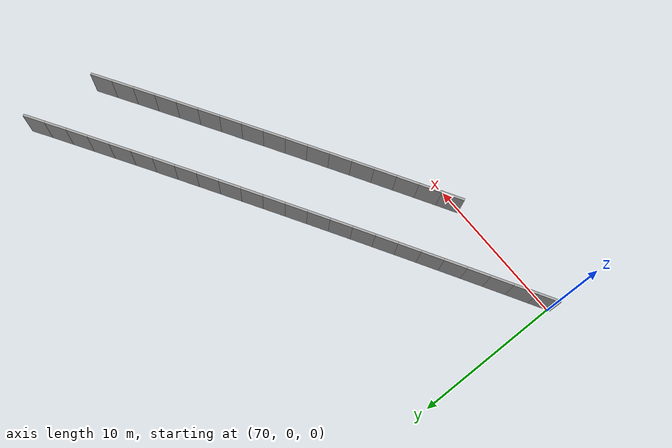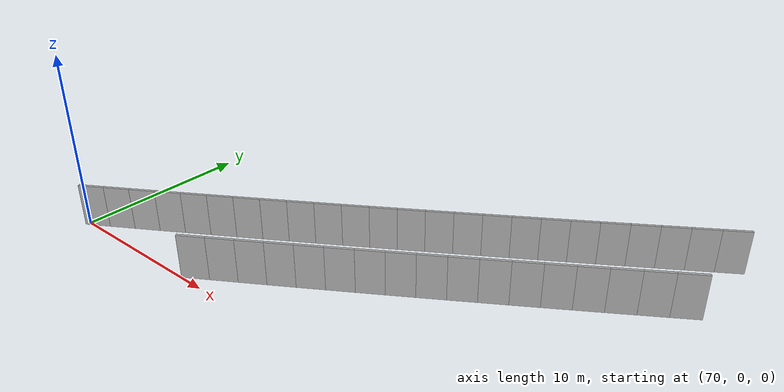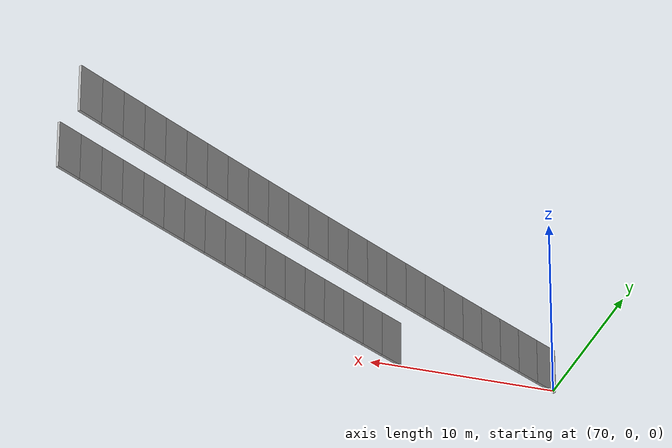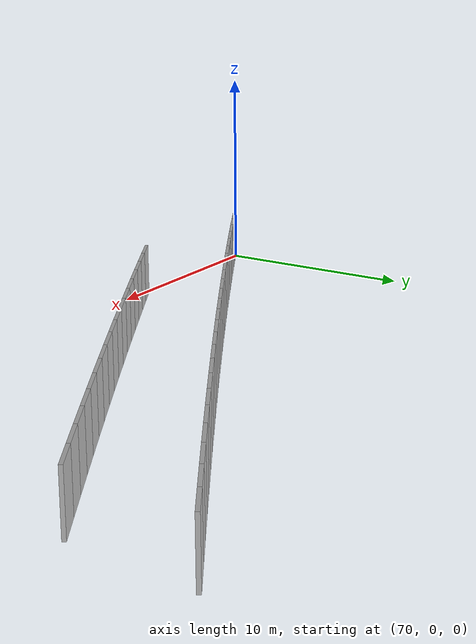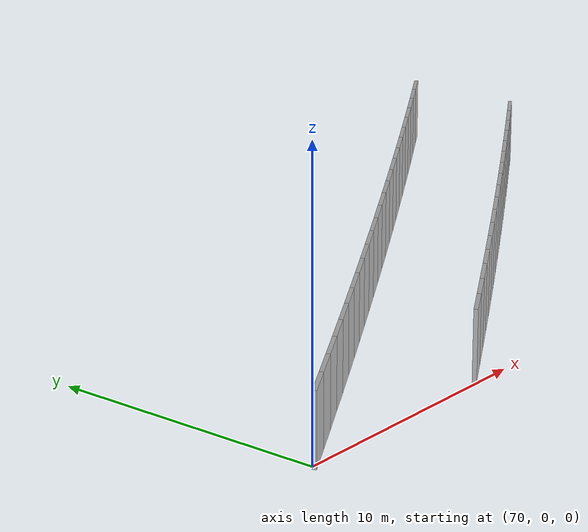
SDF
<?xml version="1.0" ?>
<sdf version="1.6">
  <model name="sps_1703">
    <pose frame="">0 0 0 0 -0 0</pose>
    <static>1</static>
    <self_collide>0</self_collide>
    <allow_auto_disable>0</allow_auto_disable>
    <link name="Wall4041">
      <kinematic>0</kinematic>
      <gravity>1</gravity>
      <self_collide>0</self_collide>
      <collision name="collision">
        <geometry>
          <box>
            <size>1.49662 0.15 2.5</size>
          </box>
        </geometry>
        <pose frame="">0 0 0 0 -0 0</pose>
      </collision>
      <visual name="visual">
        <geometry>
          <box>
            <size>1.49662 0.15 2.5</size>
          </box>
        </geometry>
        <pose frame="">0 0 0 0 -0 0</pose>
        <cast_shadows>1</cast_shadows>
        <transparency>0.0</transparency>
      </visual>
      <pose frame="">70.5067 0.202315 1.25 0 -0 0.533265</pose>
    </link>
    <link name="Wall4042">
      <kinematic>0</kinematic>
      <gravity>1</gravity>
      <self_collide>0</self_collide>
      <collision name="collision">
        <geometry>
          <box>
            <size>1.49635 0.15 2.5</size>
          </box>
        </geometry>
        <pose frame="">0 0 0 0 -0 0</pose>
      </collision>
      <visual name="visual">
        <geometry>
          <box>
            <size>1.49635 0.15 2.5</size>
          </box>
        </geometry>
        <pose frame="">0 0 0 0 -0 0</pose>
        <cast_shadows>1</cast_shadows>
        <transparency>0.0</transparency>
      </visual>
      <pose frame="">71.7948 0.964095 1.25 0 -0 0.534886</pose>
    </link>
    <link name="Wall4043">
      <kinematic>0</kinematic>
      <gravity>1</gravity>
      <self_collide>0</self_collide>
      <collision name="collision">
        <geometry>
          <box>
            <size>1.49651 0.15 2.5</size>
          </box>
        </geometry>
        <pose frame="">0 0 0 0 -0 0</pose>
      </collision>
      <visual name="visual">
        <geometry>
          <box>
            <size>1.49651 0.15 2.5</size>
          </box>
        </geometry>
        <pose frame="">0 0 0 0 -0 0</pose>
        <cast_shadows>1</cast_shadows>
        <transparency>0.0</transparency>
      </visual>
      <pose frame="">73.0815 1.72798 1.25 0 -0 0.536579</pose>
    </link>
    <link name="Wall4044">
      <kinematic>0</kinematic>
      <gravity>1</gravity>
      <self_collide>0</self_collide>
      <collision name="collision">
        <geometry>
          <box>
            <size>1.49658 0.15 2.5</size>
          </box>
        </geometry>
        <pose frame="">0 0 0 0 -0 0</pose>
      </collision>
      <visual name="visual">
        <geometry>
          <box>
            <size>1.49658 0.15 2.5</size>
          </box>
        </geometry>
        <pose frame="">0 0 0 0 -0 0</pose>
        <cast_shadows>1</cast_shadows>
        <transparency>0.0</transparency>
      </visual>
      <pose frame="">74.3672 2.49388 1.25 0 -0 0.53793</pose>
    </link>
    <link name="Wall4045">
      <kinematic>0</kinematic>
      <gravity>1</gravity>
      <self_collide>0</self_collide>
      <collision name="collision">
        <geometry>
          <box>
            <size>1.49653 0.15 2.5</size>
          </box>
        </geometry>
        <pose frame="">0 0 0 0 -0 0</pose>
      </collision>
      <visual name="visual">
        <geometry>
          <box>
            <size>1.49653 0.15 2.5</size>
          </box>
        </geometry>
        <pose frame="">0 0 0 0 -0 0</pose>
        <cast_shadows>1</cast_shadows>
        <transparency>0.0</transparency>
      </visual>
      <pose frame="">75.6518 3.26179 1.25 0 -0 0.539706</pose>
    </link>
    <link name="Wall4046">
      <kinematic>0</kinematic>
      <gravity>1</gravity>
      <self_collide>0</self_collide>
      <collision name="collision">
        <geometry>
          <box>
            <size>1.49652 0.15 2.5</size>
          </box>
        </geometry>
        <pose frame="">0 0 0 0 -0 0</pose>
      </collision>
      <visual name="visual">
        <geometry>
          <box>
            <size>1.49652 0.15 2.5</size>
          </box>
        </geometry>
        <pose frame="">0 0 0 0 -0 0</pose>
        <cast_shadows>1</cast_shadows>
        <transparency>0.0</transparency>
      </visual>
      <pose frame="">76.9351 4.03169 1.25 0 -0 0.541042</pose>
    </link>
    <link name="Wall4047">
      <kinematic>0</kinematic>
      <gravity>1</gravity>
      <self_collide>0</self_collide>
      <collision name="collision">
        <geometry>
          <box>
            <size>1.49653 0.15 2.5</size>
          </box>
        </geometry>
        <pose frame="">0 0 0 0 -0 0</pose>
      </collision>
      <visual name="visual">
        <geometry>
          <box>
            <size>1.49653 0.15 2.5</size>
          </box>
        </geometry>
        <pose frame="">0 0 0 0 -0 0</pose>
        <cast_shadows>1</cast_shadows>
        <transparency>0.0</transparency>
      </visual>
      <pose frame="">78.2172 4.80357 1.25 0 -0 0.542798</pose>
    </link>
    <link name="Wall4048">
      <kinematic>0</kinematic>
      <gravity>1</gravity>
      <self_collide>0</self_collide>
      <collision name="collision">
        <geometry>
          <box>
            <size>1.49653 0.15 2.5</size>
          </box>
        </geometry>
        <pose frame="">0 0 0 0 -0 0</pose>
      </collision>
      <visual name="visual">
        <geometry>
          <box>
            <size>1.49653 0.15 2.5</size>
          </box>
        </geometry>
        <pose frame="">0 0 0 0 -0 0</pose>
        <cast_shadows>1</cast_shadows>
        <transparency>0.0</transparency>
      </visual>
      <pose frame="">79.498 5.57759 1.25 0 -0 0.544371</pose>
    </link>
    <link name="Wall4049">
      <kinematic>0</kinematic>
      <gravity>1</gravity>
      <self_collide>0</self_collide>
      <collision name="collision">
        <geometry>
          <box>
            <size>1.4965 0.15 2.5</size>
          </box>
        </geometry>
        <pose frame="">0 0 0 0 -0 0</pose>
      </collision>
      <visual name="visual">
        <geometry>
          <box>
            <size>1.4965 0.15 2.5</size>
          </box>
        </geometry>
        <pose frame="">0 0 0 0 -0 0</pose>
        <cast_shadows>1</cast_shadows>
        <transparency>0.0</transparency>
      </visual>
      <pose frame="">80.7776 6.35359 1.25 0 -0 0.54591</pose>
    </link>
    <link name="Wall4050">
      <kinematic>0</kinematic>
      <gravity>1</gravity>
      <self_collide>0</self_collide>
      <collision name="collision">
        <geometry>
          <box>
            <size>1.49663 0.15 2.5</size>
          </box>
        </geometry>
        <pose frame="">0 0 0 0 -0 0</pose>
      </collision>
      <visual name="visual">
        <geometry>
          <box>
            <size>1.49663 0.15 2.5</size>
          </box>
        </geometry>
        <pose frame="">0 0 0 0 -0 0</pose>
        <cast_shadows>1</cast_shadows>
        <transparency>0.0</transparency>
      </visual>
      <pose frame="">82.056 7.1317 1.25 0 -0 0.547623</pose>
    </link>
    <link name="Wall4051">
      <kinematic>0</kinematic>
      <gravity>1</gravity>
      <self_collide>0</self_collide>
      <collision name="collision">
        <geometry>
          <box>
            <size>1.49641 0.15 2.5</size>
          </box>
        </geometry>
        <pose frame="">0 0 0 0 -0 0</pose>
      </collision>
      <visual name="visual">
        <geometry>
          <box>
            <size>1.49641 0.15 2.5</size>
          </box>
        </geometry>
        <pose frame="">0 0 0 0 -0 0</pose>
        <cast_shadows>1</cast_shadows>
        <transparency>0.0</transparency>
      </visual>
      <pose frame="">83.3331 7.91182 1.25 0 -0 0.5491</pose>
    </link>
    <link name="Wall4052">
      <kinematic>0</kinematic>
      <gravity>1</gravity>
      <self_collide>0</self_collide>
      <collision name="collision">
        <geometry>
          <box>
            <size>1.49639 0.15 2.5</size>
          </box>
        </geometry>
        <pose frame="">0 0 0 0 -0 0</pose>
      </collision>
      <visual name="visual">
        <geometry>
          <box>
            <size>1.49639 0.15 2.5</size>
          </box>
        </geometry>
        <pose frame="">0 0 0 0 -0 0</pose>
        <cast_shadows>1</cast_shadows>
        <transparency>0.0</transparency>
      </visual>
      <pose frame="">84.6089 8.6938 1.25 0 -0 0.55064</pose>
    </link>
    <link name="Wall4053">
      <kinematic>0</kinematic>
      <gravity>1</gravity>
      <self_collide>0</self_collide>
      <collision name="collision">
        <geometry>
          <box>
            <size>1.49669 0.15 2.5</size>
          </box>
        </geometry>
        <pose frame="">0 0 0 0 -0 0</pose>
      </collision>
      <visual name="visual">
        <geometry>
          <box>
            <size>1.49669 0.15 2.5</size>
          </box>
        </geometry>
        <pose frame="">0 0 0 0 -0 0</pose>
        <cast_shadows>1</cast_shadows>
        <transparency>0.0</transparency>
      </visual>
      <pose frame="">85.8836 9.47789 1.25 0 -0 0.552288</pose>
    </link>
    <link name="Wall4054">
      <kinematic>0</kinematic>
      <gravity>1</gravity>
      <self_collide>0</self_collide>
      <collision name="collision">
        <geometry>
          <box>
            <size>1.49636 0.15 2.5</size>
          </box>
        </geometry>
        <pose frame="">0 0 0 0 -0 0</pose>
      </collision>
      <visual name="visual">
        <geometry>
          <box>
            <size>1.49636 0.15 2.5</size>
          </box>
        </geometry>
        <pose frame="">0 0 0 0 -0 0</pose>
        <cast_shadows>1</cast_shadows>
        <transparency>0.0</transparency>
      </visual>
      <pose frame="">87.1569 10.2641 1.25 0 -0 0.553956</pose>
    </link>
    <link name="Wall4055">
      <kinematic>0</kinematic>
      <gravity>1</gravity>
      <self_collide>0</self_collide>
      <collision name="collision">
        <geometry>
          <box>
            <size>1.4965 0.15 2.5</size>
          </box>
        </geometry>
        <pose frame="">0 0 0 0 -0 0</pose>
      </collision>
      <visual name="visual">
        <geometry>
          <box>
            <size>1.4965 0.15 2.5</size>
          </box>
        </geometry>
        <pose frame="">0 0 0 0 -0 0</pose>
        <cast_shadows>1</cast_shadows>
        <transparency>0.0</transparency>
      </visual>
      <pose frame="">88.429 11.0522 1.25 0 -0 0.55534</pose>
    </link>
    <link name="Wall4056">
      <kinematic>0</kinematic>
      <gravity>1</gravity>
      <self_collide>0</self_collide>
      <collision name="collision">
        <geometry>
          <box>
            <size>1.49662 0.15 2.5</size>
          </box>
        </geometry>
        <pose frame="">0 0 0 0 -0 0</pose>
      </collision>
      <visual name="visual">
        <geometry>
          <box>
            <size>1.49662 0.15 2.5</size>
          </box>
        </geometry>
        <pose frame="">0 0 0 0 -0 0</pose>
        <cast_shadows>1</cast_shadows>
        <transparency>0.0</transparency>
      </visual>
      <pose frame="">89.7 11.8423 1.25 0 -0 0.557017</pose>
    </link>
    <link name="Wall4057">
      <kinematic>0</kinematic>
      <gravity>1</gravity>
      <self_collide>0</self_collide>
      <collision name="collision">
        <geometry>
          <box>
            <size>1.49655 0.15 2.5</size>
          </box>
        </geometry>
        <pose frame="">0 0 0 0 -0 0</pose>
      </collision>
      <visual name="visual">
        <geometry>
          <box>
            <size>1.49655 0.15 2.5</size>
          </box>
        </geometry>
        <pose frame="">0 0 0 0 -0 0</pose>
        <cast_shadows>1</cast_shadows>
        <transparency>0.0</transparency>
      </visual>
      <pose frame="">90.9697 12.6345 1.25 0 -0 0.558634</pose>
    </link>
    <link name="Wall4058">
      <kinematic>0</kinematic>
      <gravity>1</gravity>
      <self_collide>0</self_collide>
      <collision name="collision">
        <geometry>
          <box>
            <size>1.49663 0.15 2.5</size>
          </box>
        </geometry>
        <pose frame="">0 0 0 0 -0 0</pose>
      </collision>
      <visual name="visual">
        <geometry>
          <box>
            <size>1.49663 0.15 2.5</size>
          </box>
        </geometry>
        <pose frame="">0 0 0 0 -0 0</pose>
        <cast_shadows>1</cast_shadows>
        <transparency>0.0</transparency>
      </visual>
      <pose frame="">92.2382 13.4288 1.25 0 -0 0.560333</pose>
    </link>
    <link name="Wall4059">
      <kinematic>0</kinematic>
      <gravity>1</gravity>
      <self_collide>0</self_collide>
      <collision name="collision">
        <geometry>
          <box>
            <size>1.49659 0.15 2.5</size>
          </box>
        </geometry>
        <pose frame="">0 0 0 0 -0 0</pose>
      </collision>
      <visual name="visual">
        <geometry>
          <box>
            <size>1.49659 0.15 2.5</size>
          </box>
        </geometry>
        <pose frame="">0 0 0 0 -0 0</pose>
        <cast_shadows>1</cast_shadows>
        <transparency>0.0</transparency>
      </visual>
      <pose frame="">93.5053 14.2251 1.25 0 -0 0.561746</pose>
    </link>
    <link name="Wall4060">
      <kinematic>0</kinematic>
      <gravity>1</gravity>
      <self_collide>0</self_collide>
      <collision name="collision">
        <geometry>
          <box>
            <size>1.49647 0.15 2.5</size>
          </box>
        </geometry>
        <pose frame="">0 0 0 0 -0 0</pose>
      </collision>
      <visual name="visual">
        <geometry>
          <box>
            <size>1.49647 0.15 2.5</size>
          </box>
        </geometry>
        <pose frame="">0 0 0 0 -0 0</pose>
        <cast_shadows>1</cast_shadows>
        <transparency>0.0</transparency>
      </visual>
      <pose frame="">94.7712 15.0233 1.25 0 -0 0.563385</pose>
    </link>
    <link name="Wall4061">
      <kinematic>0</kinematic>
      <gravity>1</gravity>
      <self_collide>0</self_collide>
      <collision name="collision">
        <geometry>
          <box>
            <size>1.49657 0.15 2.5</size>
          </box>
        </geometry>
        <pose frame="">0 0 0 0 -0 0</pose>
      </collision>
      <visual name="visual">
        <geometry>
          <box>
            <size>1.49657 0.15 2.5</size>
          </box>
        </geometry>
        <pose frame="">0 0 0 0 -0 0</pose>
        <cast_shadows>1</cast_shadows>
        <transparency>0.0</transparency>
      </visual>
      <pose frame="">96.0358 15.8235 1.25 0 -0 0.564937</pose>
    </link>
    <link name="Wall4062">
      <kinematic>0</kinematic>
      <gravity>1</gravity>
      <self_collide>0</self_collide>
      <collision name="collision">
        <geometry>
          <box>
            <size>1.49662 0.15 2.5</size>
          </box>
        </geometry>
        <pose frame="">0 0 0 0 -0 0</pose>
      </collision>
      <visual name="visual">
        <geometry>
          <box>
            <size>1.49662 0.15 2.5</size>
          </box>
        </geometry>
        <pose frame="">0 0 0 0 -0 0</pose>
        <cast_shadows>1</cast_shadows>
        <transparency>0.0</transparency>
      </visual>
      <pose frame="">97.2993 16.6257 1.25 0 -0 0.56651</pose>
    </link>
    <link name="Wall4063">
      <kinematic>0</kinematic>
      <gravity>1</gravity>
      <self_collide>0</self_collide>
      <collision name="collision">
        <geometry>
          <box>
            <size>1.49644 0.15 2.5</size>
          </box>
        </geometry>
        <pose frame="">0 0 0 0 -0 0</pose>
      </collision>
      <visual name="visual">
        <geometry>
          <box>
            <size>1.49644 0.15 2.5</size>
          </box>
        </geometry>
        <pose frame="">0 0 0 0 -0 0</pose>
        <cast_shadows>1</cast_shadows>
        <transparency>0.0</transparency>
      </visual>
      <pose frame="">98.5614 17.4299 1.25 0 -0 0.568137</pose>
    </link>
    <link name="Wall4064">
      <kinematic>0</kinematic>
      <gravity>1</gravity>
      <self_collide>0</self_collide>
      <collision name="collision">
        <geometry>
          <box>
            <size>1.49629 0.15 2.5</size>
          </box>
        </geometry>
        <pose frame="">0 0 0 0 -0 0</pose>
      </collision>
      <visual name="visual">
        <geometry>
          <box>
            <size>1.49629 0.15 2.5</size>
          </box>
        </geometry>
        <pose frame="">0 0 0 0 -0 0</pose>
        <cast_shadows>1</cast_shadows>
        <transparency>0.0</transparency>
      </visual>
      <pose frame="">99.822 18.236 1.25 0 -0 0.569651</pose>
    </link>
    <link name="Wall7821">
      <kinematic>0</kinematic>
      <gravity>1</gravity>
      <self_collide>0</self_collide>
      <collision name="collision">
        <geometry>
          <box>
            <size>1.50322 0.15 2.5</size>
          </box>
        </geometry>
        <pose frame="">0 0 0 0 -0 0</pose>
      </collision>
      <visual name="visual">
        <geometry>
          <box>
            <size>1.50322 0.15 2.5</size>
          </box>
        </geometry>
        <pose frame="">0 0 0 0 -0 0</pose>
        <cast_shadows>1</cast_shadows>
        <transparency>0.0</transparency>
      </visual>
      <pose frame="">79.0696 0.483901 1.25 0 -0 0.541206</pose>
    </link>
    <link name="Wall7822">
      <kinematic>0</kinematic>
      <gravity>1</gravity>
      <self_collide>0</self_collide>
      <collision name="collision">
        <geometry>
          <box>
            <size>1.50287 0.15 2.5</size>
          </box>
        </geometry>
        <pose frame="">0 0 0 0 -0 0</pose>
      </collision>
      <visual name="visual">
        <geometry>
          <box>
            <size>1.50287 0.15 2.5</size>
          </box>
        </geometry>
        <pose frame="">0 0 0 0 -0 0</pose>
        <cast_shadows>1</cast_shadows>
        <transparency>0.0</transparency>
      </visual>
      <pose frame="">80.3572 1.25929 1.25 0 -0 0.542864</pose>
    </link>
    <link name="Wall7823">
      <kinematic>0</kinematic>
      <gravity>1</gravity>
      <self_collide>0</self_collide>
      <collision name="collision">
        <geometry>
          <box>
            <size>1.50314 0.15 2.5</size>
          </box>
        </geometry>
        <pose frame="">0 0 0 0 -0 0</pose>
      </collision>
      <visual name="visual">
        <geometry>
          <box>
            <size>1.50314 0.15 2.5</size>
          </box>
        </geometry>
        <pose frame="">0 0 0 0 -0 0</pose>
        <cast_shadows>1</cast_shadows>
        <transparency>0.0</transparency>
      </visual>
      <pose frame="">81.6436 2.03657 1.25 0 -0 0.54418</pose>
    </link>
    <link name="Wall7824">
      <kinematic>0</kinematic>
      <gravity>1</gravity>
      <self_collide>0</self_collide>
      <collision name="collision">
        <geometry>
          <box>
            <size>1.50307 0.15 2.5</size>
          </box>
        </geometry>
        <pose frame="">0 0 0 0 -0 0</pose>
      </collision>
      <visual name="visual">
        <geometry>
          <box>
            <size>1.50307 0.15 2.5</size>
          </box>
        </geometry>
        <pose frame="">0 0 0 0 -0 0</pose>
        <cast_shadows>1</cast_shadows>
        <transparency>0.0</transparency>
      </visual>
      <pose frame="">82.9289 2.81587 1.25 0 -0 0.545914</pose>
    </link>
    <link name="Wall7825">
      <kinematic>0</kinematic>
      <gravity>1</gravity>
      <self_collide>0</self_collide>
      <collision name="collision">
        <geometry>
          <box>
            <size>1.50292 0.15 2.5</size>
          </box>
        </geometry>
        <pose frame="">0 0 0 0 -0 0</pose>
      </collision>
      <visual name="visual">
        <geometry>
          <box>
            <size>1.50292 0.15 2.5</size>
          </box>
        </geometry>
        <pose frame="">0 0 0 0 -0 0</pose>
        <cast_shadows>1</cast_shadows>
        <transparency>0.0</transparency>
      </visual>
      <pose frame="">84.2129 3.59727 1.25 0 -0 0.547544</pose>
    </link>
    <link name="Wall7826">
      <kinematic>0</kinematic>
      <gravity>1</gravity>
      <self_collide>0</self_collide>
      <collision name="collision">
        <geometry>
          <box>
            <size>1.50323 0.15 2.5</size>
          </box>
        </geometry>
        <pose frame="">0 0 0 0 -0 0</pose>
      </collision>
      <visual name="visual">
        <geometry>
          <box>
            <size>1.50323 0.15 2.5</size>
          </box>
        </geometry>
        <pose frame="">0 0 0 0 -0 0</pose>
        <cast_shadows>1</cast_shadows>
        <transparency>0.0</transparency>
      </visual>
      <pose frame="">85.4956 4.38078 1.25 0 -0 0.549131</pose>
    </link>
    <link name="Wall7827">
      <kinematic>0</kinematic>
      <gravity>1</gravity>
      <self_collide>0</self_collide>
      <collision name="collision">
        <geometry>
          <box>
            <size>1.50304 0.15 2.5</size>
          </box>
        </geometry>
        <pose frame="">0 0 0 0 -0 0</pose>
      </collision>
      <visual name="visual">
        <geometry>
          <box>
            <size>1.50304 0.15 2.5</size>
          </box>
        </geometry>
        <pose frame="">0 0 0 0 -0 0</pose>
        <cast_shadows>1</cast_shadows>
        <transparency>0.0</transparency>
      </visual>
      <pose frame="">86.7771 5.1664 1.25 0 -0 0.550782</pose>
    </link>
    <link name="Wall7828">
      <kinematic>0</kinematic>
      <gravity>1</gravity>
      <self_collide>0</self_collide>
      <collision name="collision">
        <geometry>
          <box>
            <size>1.50307 0.15 2.5</size>
          </box>
        </geometry>
        <pose frame="">0 0 0 0 -0 0</pose>
      </collision>
      <visual name="visual">
        <geometry>
          <box>
            <size>1.50307 0.15 2.5</size>
          </box>
        </geometry>
        <pose frame="">0 0 0 0 -0 0</pose>
        <cast_shadows>1</cast_shadows>
        <transparency>0.0</transparency>
      </visual>
      <pose frame="">88.0572 5.95399 1.25 0 -0 0.552293</pose>
    </link>
    <link name="Wall7829">
      <kinematic>0</kinematic>
      <gravity>1</gravity>
      <self_collide>0</self_collide>
      <collision name="collision">
        <geometry>
          <box>
            <size>1.50315 0.15 2.5</size>
          </box>
        </geometry>
        <pose frame="">0 0 0 0 -0 0</pose>
      </collision>
      <visual name="visual">
        <geometry>
          <box>
            <size>1.50315 0.15 2.5</size>
          </box>
        </geometry>
        <pose frame="">0 0 0 0 -0 0</pose>
        <cast_shadows>1</cast_shadows>
        <transparency>0.0</transparency>
      </visual>
      <pose frame="">89.3363 6.74358 1.25 0 -0 0.553839</pose>
    </link>
    <link name="Wall7830">
      <kinematic>0</kinematic>
      <gravity>1</gravity>
      <self_collide>0</self_collide>
      <collision name="collision">
        <geometry>
          <box>
            <size>1.50312 0.15 2.5</size>
          </box>
        </geometry>
        <pose frame="">0 0 0 0 -0 0</pose>
      </collision>
      <visual name="visual">
        <geometry>
          <box>
            <size>1.50312 0.15 2.5</size>
          </box>
        </geometry>
        <pose frame="">0 0 0 0 -0 0</pose>
        <cast_shadows>1</cast_shadows>
        <transparency>0.0</transparency>
      </visual>
      <pose frame="">90.6141 7.53517 1.25 0 -0 0.555427</pose>
    </link>
    <link name="Wall7831">
      <kinematic>0</kinematic>
      <gravity>1</gravity>
      <self_collide>0</self_collide>
      <collision name="collision">
        <geometry>
          <box>
            <size>1.50304 0.15 2.5</size>
          </box>
        </geometry>
        <pose frame="">0 0 0 0 -0 0</pose>
      </collision>
      <visual name="visual">
        <geometry>
          <box>
            <size>1.50304 0.15 2.5</size>
          </box>
        </geometry>
        <pose frame="">0 0 0 0 -0 0</pose>
        <cast_shadows>1</cast_shadows>
        <transparency>0.0</transparency>
      </visual>
      <pose frame="">91.8906 8.32878 1.25 0 -0 0.557037</pose>
    </link>
    <link name="Wall7832">
      <kinematic>0</kinematic>
      <gravity>1</gravity>
      <self_collide>0</self_collide>
      <collision name="collision">
        <geometry>
          <box>
            <size>1.50307 0.15 2.5</size>
          </box>
        </geometry>
        <pose frame="">0 0 0 0 -0 0</pose>
      </collision>
      <visual name="visual">
        <geometry>
          <box>
            <size>1.50307 0.15 2.5</size>
          </box>
        </geometry>
        <pose frame="">0 0 0 0 -0 0</pose>
        <cast_shadows>1</cast_shadows>
        <transparency>0.0</transparency>
      </visual>
      <pose frame="">93.1658 9.1244 1.25 0 -0 0.558604</pose>
    </link>
    <link name="Wall7833">
      <kinematic>0</kinematic>
      <gravity>1</gravity>
      <self_collide>0</self_collide>
      <collision name="collision">
        <geometry>
          <box>
            <size>1.50317 0.15 2.5</size>
          </box>
        </geometry>
        <pose frame="">0 0 0 0 -0 0</pose>
      </collision>
      <visual name="visual">
        <geometry>
          <box>
            <size>1.50317 0.15 2.5</size>
          </box>
        </geometry>
        <pose frame="">0 0 0 0 -0 0</pose>
        <cast_shadows>1</cast_shadows>
        <transparency>0.0</transparency>
      </visual>
      <pose frame="">94.4398 9.9221 1.25 0 -0 0.560239</pose>
    </link>
    <link name="Wall7834">
      <kinematic>0</kinematic>
      <gravity>1</gravity>
      <self_collide>0</self_collide>
      <collision name="collision">
        <geometry>
          <box>
            <size>1.5031 0.15 2.5</size>
          </box>
        </geometry>
        <pose frame="">0 0 0 0 -0 0</pose>
      </collision>
      <visual name="visual">
        <geometry>
          <box>
            <size>1.5031 0.15 2.5</size>
          </box>
        </geometry>
        <pose frame="">0 0 0 0 -0 0</pose>
        <cast_shadows>1</cast_shadows>
        <transparency>0.0</transparency>
      </visual>
      <pose frame="">95.7125 10.7219 1.25 0 -0 0.561849</pose>
    </link>
    <link name="Wall7835">
      <kinematic>0</kinematic>
      <gravity>1</gravity>
      <self_collide>0</self_collide>
      <collision name="collision">
        <geometry>
          <box>
            <size>1.50305 0.15 2.5</size>
          </box>
        </geometry>
        <pose frame="">0 0 0 0 -0 0</pose>
      </collision>
      <visual name="visual">
        <geometry>
          <box>
            <size>1.50305 0.15 2.5</size>
          </box>
        </geometry>
        <pose frame="">0 0 0 0 -0 0</pose>
        <cast_shadows>1</cast_shadows>
        <transparency>0.0</transparency>
      </visual>
      <pose frame="">96.9839 11.5236 1.25 0 -0 0.563313</pose>
    </link>
    <link name="Wall7836">
      <kinematic>0</kinematic>
      <gravity>1</gravity>
      <self_collide>0</self_collide>
      <collision name="collision">
        <geometry>
          <box>
            <size>1.50298 0.15 2.5</size>
          </box>
        </geometry>
        <pose frame="">0 0 0 0 -0 0</pose>
      </collision>
      <visual name="visual">
        <geometry>
          <box>
            <size>1.50298 0.15 2.5</size>
          </box>
        </geometry>
        <pose frame="">0 0 0 0 -0 0</pose>
        <cast_shadows>1</cast_shadows>
        <transparency>0.0</transparency>
      </visual>
      <pose frame="">98.254 12.3273 1.25 0 -0 0.565069</pose>
    </link>
    <link name="Wall7837">
      <kinematic>0</kinematic>
      <gravity>1</gravity>
      <self_collide>0</self_collide>
      <collision name="collision">
        <geometry>
          <box>
            <size>1.50301 0.15 2.5</size>
          </box>
        </geometry>
        <pose frame="">0 0 0 0 -0 0</pose>
      </collision>
      <visual name="visual">
        <geometry>
          <box>
            <size>1.50301 0.15 2.5</size>
          </box>
        </geometry>
        <pose frame="">0 0 0 0 -0 0</pose>
        <cast_shadows>1</cast_shadows>
        <transparency>0.0</transparency>
      </visual>
      <pose frame="">99.5228 13.133 1.25 0 -0 0.566455</pose>
    </link>
  </model>
</sdf>
